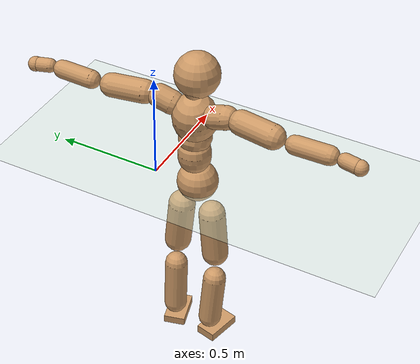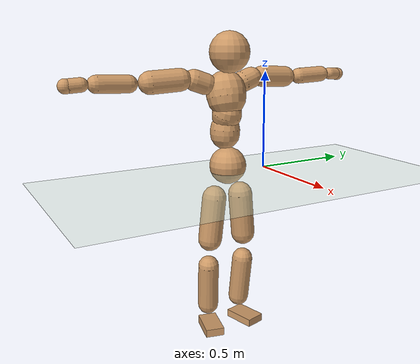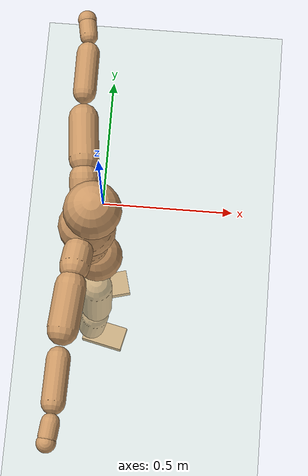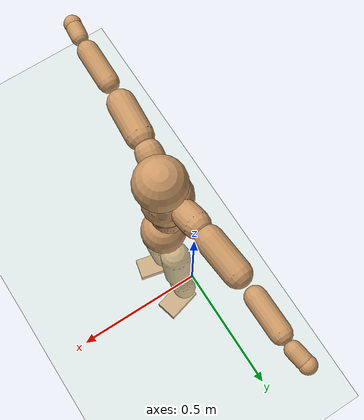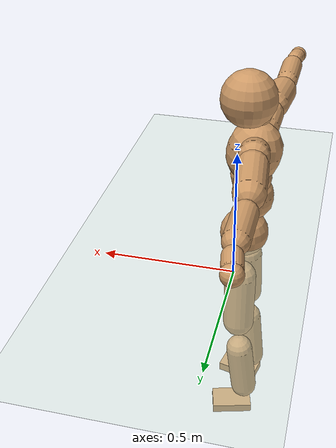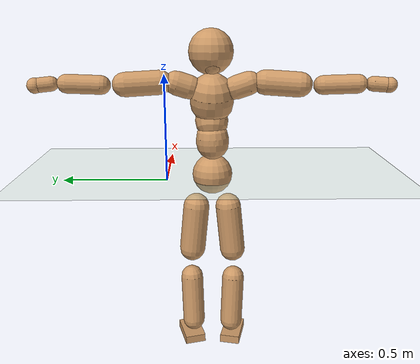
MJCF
<mujoco model="humanoid">
  <compiler coordinate="local"/>
  <default>
    <joint damping="0.0" armature="0.01" stiffness="0.0" limited="true"/>
    <geom conaffinity="1" condim="3" contype="7" margin="0.001" rgba="0.8 0.6 .4 1"/>
  </default>
  <asset>
    <texture type="skybox" builtin="gradient" rgb1=".4 .5 .6" rgb2="0 0 0" width="100" height="100"/>
    <texture builtin="flat" height="1278" mark="cross" markrgb="1 1 1" name="texgeom" random="0.01" rgb1="0.8 0.6 0.4" rgb2="0.8 0.6 0.4" type="cube" width="127"/>
    <texture builtin="checker" height="100" name="texplane" rgb1="0 0 0" rgb2="0.8 0.8 0.8" type="2d" width="100"/>
    <material name="MatPlane" reflectance="0.5" shininess="1" specular="1" texrepeat="60 60" texture="texplane"/>
    <material name="geom" texture="texgeom" texuniform="true"/>
  </asset>
  <worldbody>
    <light cutoff="100" diffuse="1 1 1" dir="-0 0 -1.3" directional="true" exponent="1" pos="0 0 1.3" specular=".1 .1 .1"/>
    <geom conaffinity="1" condim="3" name="floor" pos="0 0 0" rgba="0.8 0.9 0.8 1" size="100 100 .2" type="plane" material="MatPlane"/>
    <body name="Pelvis" pos="-0.0011 -0.2196 0.0309">
      <freejoint name="Pelvis"/>
      <geom type="sphere" contype="1" conaffinity="1" density="500" size="0.0955" pos="0.0000 0.0000 0.0000" name="Pelvis"/>
      <body name="L_Hip" pos="-0.0032 0.0718 -0.0889">
        <joint name="L_Hip_x" type="hinge" pos="0 0 0" axis="1 0 0" stiffness="800" damping="80" armature="0.02" range="-180.0000 180.0000"/>
        <joint name="L_Hip_y" type="hinge" pos="0 0 0" axis="0 1 0" stiffness="800" damping="80" armature="0.02" range="-180.0000 180.0000"/>
        <joint name="L_Hip_z" type="hinge" pos="0 0 0" axis="0 0 1" stiffness="800" damping="80" armature="0.02" range="-180.0000 180.0000"/>
        <geom type="capsule" contype="1" conaffinity="1" density="500" fromto="-0.0010 0.0071 -0.0750 -0.0041 0.0284 -0.3002" size="0.0633" name="L_Hip"/>
        <body name="L_Knee" pos="-0.0051 0.0355 -0.3752">
          <joint name="L_Knee_x" type="hinge" pos="0 0 0" axis="1 0 0" stiffness="800" damping="80" armature="0.02" range="-180.0000 180.0000"/>
          <joint name="L_Knee_y" type="hinge" pos="0 0 0" axis="0 1 0" stiffness="800" damping="80" armature="0.02" range="-180.0000 180.0000"/>
          <joint name="L_Knee_z" type="hinge" pos="0 0 0" axis="0 0 1" stiffness="800" damping="80" armature="0.02" range="-180.0000 180.0000"/>
          <geom type="capsule" contype="1" conaffinity="1" density="500" fromto="-0.0087 -0.0026 -0.0792 -0.0349 -0.0105 -0.3168" size="0.055" name="L_Knee"/>
          <body name="L_Ankle" pos="-0.0437 -0.0131 -0.3959">
            <joint name="L_Ankle_x" type="hinge" pos="0 0 0" axis="1 0 0" stiffness="800" damping="80" armature="0.02" range="-180.0000 180.0000"/>
            <joint name="L_Ankle_y" type="hinge" pos="0 0 0" axis="0 1 0" stiffness="800" damping="80" armature="0.02" range="-180.0000 180.0000"/>
            <joint name="L_Ankle_z" type="hinge" pos="0 0 0" axis="0 0 1" stiffness="800" damping="80" armature="0.02" range="-180.0000 180.0000"/>
            <geom type="box" contype="1" conaffinity="1" density="500" pos="0.0596 0.0156 -0.0280" size="0.085 0.0516 0.0202" quat="0.9918 0.0000 0.0000 0.1278" name="L_Ankle"/>
            <body name="L_Toe" pos="0.1191 0.0312 -0.056">
              <joint name="L_Toe_x" type="hinge" pos="0 0 0" axis="1 0 0" stiffness="500" damping="50" armature="0.02" range="-180.0000 180.0000"/>
              <joint name="L_Toe_y" type="hinge" pos="0 0 0" axis="0 1 0" stiffness="500" damping="50" armature="0.02" range="-180.0000 180.0000"/>
              <joint name="L_Toe_z" type="hinge" pos="0 0 0" axis="0 0 1" stiffness="500" damping="50" armature="0.02" range="-180.0000 180.0000"/>
              <geom type="box" contype="1" conaffinity="1" density="500" pos="0.0000 0.0000 0.0278" size="0.0011 0.0025 0.001" quat="0.9911 0.0000 0.0000 0.1334" name="L_Toe"/>
            </body>
          </body>
        </body>
      </body>
      <body name="R_Hip" pos="-0.0022 -0.07 -0.088">
        <joint name="R_Hip_x" type="hinge" pos="0 0 0" axis="1 0 0" stiffness="800" damping="80" armature="0.02" range="-180.0000 180.0000"/>
        <joint name="R_Hip_y" type="hinge" pos="0 0 0" axis="0 1 0" stiffness="800" damping="80" armature="0.02" range="-180.0000 180.0000"/>
        <joint name="R_Hip_z" type="hinge" pos="0 0 0" axis="0 0 1" stiffness="800" damping="80" armature="0.02" range="-180.0000 180.0000"/>
        <geom type="capsule" contype="1" conaffinity="1" density="500" fromto="-0.0019 -0.0078 -0.0761 -0.0077 -0.0312 -0.3044" size="0.0621" name="R_Hip"/>
        <body name="R_Knee" pos="-0.0096 -0.039 -0.3805">
          <joint name="R_Knee_x" type="hinge" pos="0 0 0" axis="1 0 0" stiffness="800" damping="80" armature="0.02" range="-180.0000 180.0000"/>
          <joint name="R_Knee_y" type="hinge" pos="0 0 0" axis="0 1 0" stiffness="800" damping="80" armature="0.02" range="-180.0000 180.0000"/>
          <joint name="R_Knee_z" type="hinge" pos="0 0 0" axis="0 0 1" stiffness="800" damping="80" armature="0.02" range="-180.0000 180.0000"/>
          <geom type="capsule" contype="1" conaffinity="1" density="500" fromto="-0.0085 0.0030 -0.0794 -0.0341 0.0120 -0.3174" size="0.055" name="R_Knee"/>
          <body name="R_Ankle" pos="-0.0426 0.015 -0.3968">
            <joint name="R_Ankle_x" type="hinge" pos="0 0 0" axis="1 0 0" stiffness="800" damping="80" armature="0.02" range="-180.0000 180.0000"/>
            <joint name="R_Ankle_y" type="hinge" pos="0 0 0" axis="0 1 0" stiffness="800" damping="80" armature="0.02" range="-180.0000 180.0000"/>
            <joint name="R_Ankle_z" type="hinge" pos="0 0 0" axis="0 0 1" stiffness="800" damping="80" armature="0.02" range="-180.0000 180.0000"/>
            <geom type="box" contype="1" conaffinity="1" density="500" pos="0.0618 -0.0142 -0.0248" size="0.0867 0.0492 0.021" quat="0.9936 0.0000 0.0000 -0.1127" name="R_Ankle"/>
            <body name="R_Toe" pos="0.1236 -0.0284 -0.0495">
              <joint name="R_Toe_x" type="hinge" pos="0 0 0" axis="1 0 0" stiffness="500" damping="50" armature="0.02" range="-180.0000 180.0000"/>
              <joint name="R_Toe_y" type="hinge" pos="0 0 0" axis="0 1 0" stiffness="500" damping="50" armature="0.02" range="-180.0000 180.0000"/>
              <joint name="R_Toe_z" type="hinge" pos="0 0 0" axis="0 0 1" stiffness="500" damping="50" armature="0.02" range="-180.0000 180.0000"/>
              <geom type="box" contype="1" conaffinity="1" density="500" pos="0.0000 0.0000 0.0255" size="0.001 0.0025 0.0011" quat="0.9946 0.0000 0.0000 -0.1034" name="R_Toe"/>
            </body>
          </body>
        </body>
      </body>
      <body name="Torso" pos="-0.0302 -0.0024 0.1073">
        <joint name="Torso_x" type="hinge" pos="0 0 0" axis="1 0 0" stiffness="1000" damping="100" armature="0.02" range="-180.0000 180.0000"/>
        <joint name="Torso_y" type="hinge" pos="0 0 0" axis="0 1 0" stiffness="1000" damping="100" armature="0.02" range="-180.0000 180.0000"/>
        <joint name="Torso_z" type="hinge" pos="0 0 0" axis="0 0 1" stiffness="1000" damping="100" armature="0.02" range="-180.0000 180.0000"/>
        <geom type="capsule" contype="1" conaffinity="1" density="500" fromto="0.0009 0.0032 0.0772 0.0006 0.0022 0.0514" size="0.0762" name="Torso"/>
        <body name="Spine" pos="0.0016 0.0054 0.1286">
          <joint name="Spine_x" type="hinge" pos="0 0 0" axis="1 0 0" stiffness="1000" damping="100" armature="0.02" range="-180.0000 180.0000"/>
          <joint name="Spine_y" type="hinge" pos="0 0 0" axis="0 1 0" stiffness="1000" damping="100" armature="0.02" range="-180.0000 180.0000"/>
          <joint name="Spine_z" type="hinge" pos="0 0 0" axis="0 0 1" stiffness="1000" damping="100" armature="0.02" range="-180.0000 180.0000"/>
          <geom type="capsule" contype="1" conaffinity="1" density="500" fromto="0.0141 0.0006 0.0313 0.0094 0.0004 0.0209" size="0.0762" name="Spine"/>
          <body name="Chest" pos="0.0235 0.001 0.0522">
            <joint name="Chest_x" type="hinge" pos="0 0 0" axis="1 0 0" stiffness="1000" damping="100" armature="0.02" range="-180.0000 180.0000"/>
            <joint name="Chest_y" type="hinge" pos="0 0 0" axis="0 1 0" stiffness="1000" damping="100" armature="0.02" range="-180.0000 180.0000"/>
            <joint name="Chest_z" type="hinge" pos="0 0 0" axis="0 0 1" stiffness="1000" damping="100" armature="0.02" range="-180.0000 180.0000"/>
            <geom type="capsule" contype="1" conaffinity="1" density="500" fromto="-0.0220 -0.0014 0.0922 -0.0147 -0.0009 0.0615" size="0.1006" name="Chest"/>
            <body name="Neck" pos="-0.0414 -0.0028 0.2166">
              <joint name="Neck_x" type="hinge" pos="0 0 0" axis="1 0 0" stiffness="500" damping="50" armature="0.02" range="-180.0000 180.0000"/>
              <joint name="Neck_y" type="hinge" pos="0 0 0" axis="0 1 0" stiffness="500" damping="50" armature="0.02" range="-180.0000 180.0000"/>
              <joint name="Neck_z" type="hinge" pos="0 0 0" axis="0 0 1" stiffness="500" damping="50" armature="0.02" range="-180.0000 180.0000"/>
              <geom type="capsule" contype="1" conaffinity="1" density="500" fromto="0.0100 0.0011 0.0129 0.0398 0.0043 0.0516" size="0.0448" name="Neck"/>
              <body name="Head" pos="0.0498 0.0054 0.0644">
                <joint name="Head_x" type="hinge" pos="0 0 0" axis="1 0 0" stiffness="500" damping="50" armature="0.02" range="-180.0000 180.0000"/>
                <joint name="Head_y" type="hinge" pos="0 0 0" axis="0 1 0" stiffness="500" damping="50" armature="0.02" range="-180.0000 180.0000"/>
                <joint name="Head_z" type="hinge" pos="0 0 0" axis="0 0 1" stiffness="500" damping="50" armature="0.02" range="-180.0000 180.0000"/>
                <geom type="sphere" contype="1" conaffinity="1" density="500" size="0.1021" pos="0.0000 0.0000 0.0000" name="Head"/>
              </body>
            </body>
            <body name="L_Thorax" pos="-0.032 0.0823 0.1237">
              <joint name="L_Thorax_x" type="hinge" pos="0 0 0" axis="1 0 0" stiffness="500" damping="50" armature="0.02" range="-180.0000 180.0000"/>
              <joint name="L_Thorax_y" type="hinge" pos="0 0 0" axis="0 1 0" stiffness="500" damping="50" armature="0.02" range="-180.0000 180.0000"/>
              <joint name="L_Thorax_z" type="hinge" pos="0 0 0" axis="0 0 1" stiffness="500" damping="50" armature="0.02" range="-180.0000 180.0000"/>
              <geom type="capsule" contype="1" conaffinity="1" density="500" fromto="-0.0021 0.0192 0.0063 -0.0084 0.0768 0.0251" size="0.0543" name="L_Thorax"/>
              <body name="L_Shoulder" pos="-0.0104 0.096 0.0314">
                <joint name="L_Shoulder_x" type="hinge" pos="0 0 0" axis="1 0 0" stiffness="500" damping="50" armature="0.02" range="-720.0000 720.0000"/>
                <joint name="L_Shoulder_y" type="hinge" pos="0 0 0" axis="0 1 0" stiffness="500" damping="50" armature="0.02" range="-720.0000 720.0000"/>
                <joint name="L_Shoulder_z" type="hinge" pos="0 0 0" axis="0 0 1" stiffness="500" damping="50" armature="0.02" range="-720.0000 720.0000"/>
                <geom type="capsule" contype="1" conaffinity="1" density="500" fromto="-0.0054 0.0519 -0.0026 -0.0216 0.2075 -0.0103" size="0.0545" name="L_Shoulder"/>
                <body name="L_Elbow" pos="-0.027 0.2594 -0.0128">
                  <joint name="L_Elbow_x" type="hinge" pos="0 0 0" axis="1 0 0" stiffness="500" damping="50" armature="0.02" range="-720.0000 720.0000"/>
                  <joint name="L_Elbow_y" type="hinge" pos="0 0 0" axis="0 1 0" stiffness="500" damping="50" armature="0.02" range="-720.0000 720.0000"/>
                  <joint name="L_Elbow_z" type="hinge" pos="0 0 0" axis="0 0 1" stiffness="500" damping="50" armature="0.02" range="-720.0000 720.0000"/>
                  <geom type="capsule" contype="1" conaffinity="1" density="500" fromto="-0.0002 0.0501 0.0018 -0.0007 0.2003 0.0073" size="0.0421" name="L_Elbow"/>
                  <body name="L_Wrist" pos="-0.0008 0.2503 0.0092">
                    <joint name="L_Wrist_x" type="hinge" pos="0 0 0" axis="1 0 0" stiffness="300" damping="30" armature="0.02" range="-180.0000 180.0000"/>
                    <joint name="L_Wrist_y" type="hinge" pos="0 0 0" axis="0 1 0" stiffness="300" damping="30" armature="0.02" range="-180.0000 180.0000"/>
                    <joint name="L_Wrist_z" type="hinge" pos="0 0 0" axis="0 0 1" stiffness="300" damping="30" armature="0.02" range="-180.0000 180.0000"/>
                    <geom type="capsule" contype="1" conaffinity="1" density="500" fromto="-0.0031 0.0171 -0.0015 -0.0124 0.0685 -0.0061" size="0.0325" name="L_Wrist"/>
                    <body name="L_Hand" pos="-0.0155 0.0856 -0.0077">
                      <joint name="L_Hand_x" type="hinge" pos="0 0 0" axis="1 0 0" stiffness="300" damping="30" armature="0.02" range="-180.0000 180.0000"/>
                      <joint name="L_Hand_y" type="hinge" pos="0 0 0" axis="0 1 0" stiffness="300" damping="30" armature="0.02" range="-180.0000 180.0000"/>
                      <joint name="L_Hand_z" type="hinge" pos="0 0 0" axis="0 0 1" stiffness="300" damping="30" armature="0.02" range="-180.0000 180.0000"/>
                      <geom type="sphere" contype="1" conaffinity="1" density="500" size="0.0342" pos="0.0000 0.0000 0.0000" name="L_Hand"/>
                    </body>
                  </body>
                </body>
              </body>
            </body>
            <body name="R_Thorax" pos="-0.0368 -0.0863 0.1206">
              <joint name="R_Thorax_x" type="hinge" pos="0 0 0" axis="1 0 0" stiffness="500" damping="50" armature="0.02" range="-180.0000 180.0000"/>
              <joint name="R_Thorax_y" type="hinge" pos="0 0 0" axis="0 1 0" stiffness="500" damping="50" armature="0.02" range="-180.0000 180.0000"/>
              <joint name="R_Thorax_z" type="hinge" pos="0 0 0" axis="0 0 1" stiffness="500" damping="50" armature="0.02" range="-180.0000 180.0000"/>
              <geom type="capsule" contype="1" conaffinity="1" density="500" fromto="-0.0019 -0.0203 0.0070 -0.0077 -0.0811 0.0279" size="0.0535" name="R_Thorax"/>
              <body name="R_Shoulder" pos="-0.0096 -0.1013 0.0349">
                <joint name="R_Shoulder_x" type="hinge" pos="0 0 0" axis="1 0 0" stiffness="500" damping="50" armature="0.02" range="-720.0000 720.0000"/>
                <joint name="R_Shoulder_y" type="hinge" pos="0 0 0" axis="0 1 0" stiffness="500" damping="50" armature="0.02" range="-720.0000 720.0000"/>
                <joint name="R_Shoulder_z" type="hinge" pos="0 0 0" axis="0 0 1" stiffness="500" damping="50" armature="0.02" range="-720.0000 720.0000"/>
                <geom type="capsule" contype="1" conaffinity="1" density="500" fromto="-0.0044 -0.0510 -0.0030 -0.0176 -0.2041 -0.0119" size="0.056" name="R_Shoulder"/>
                <body name="R_Elbow" pos="-0.0219 -0.2551 -0.0148">
                  <joint name="R_Elbow_x" type="hinge" pos="0 0 0" axis="1 0 0" stiffness="500" damping="50" armature="0.02" range="-720.0000 720.0000"/>
                  <joint name="R_Elbow_y" type="hinge" pos="0 0 0" axis="0 1 0" stiffness="500" damping="50" armature="0.02" range="-720.0000 720.0000"/>
                  <joint name="R_Elbow_z" type="hinge" pos="0 0 0" axis="0 0 1" stiffness="500" damping="50" armature="0.02" range="-720.0000 720.0000"/>
                  <geom type="capsule" contype="1" conaffinity="1" density="500" fromto="-0.0009 -0.0512 0.0016 -0.0034 -0.2049 0.0065" size="0.0425" name="R_Elbow"/>
                  <body name="R_Wrist" pos="-0.0043 -0.2561 0.0082">
                    <joint name="R_Wrist_x" type="hinge" pos="0 0 0" axis="1 0 0" stiffness="300" damping="30" armature="0.02" range="-180.0000 180.0000"/>
                    <joint name="R_Wrist_y" type="hinge" pos="0 0 0" axis="0 1 0" stiffness="300" damping="30" armature="0.02" range="-180.0000 180.0000"/>
                    <joint name="R_Wrist_z" type="hinge" pos="0 0 0" axis="0 0 1" stiffness="300" damping="30" armature="0.02" range="-180.0000 180.0000"/>
                    <geom type="capsule" contype="1" conaffinity="1" density="500" fromto="-0.0021 -0.0173 -0.0011 -0.0082 -0.0690 -0.0046" size="0.0334" name="R_Wrist"/>
                    <body name="R_Hand" pos="-0.0103 -0.0863 -0.0057">
                      <joint name="R_Hand_x" type="hinge" pos="0 0 0" axis="1 0 0" stiffness="300" damping="30" armature="0.02" range="-180.0000 180.0000"/>
                      <joint name="R_Hand_y" type="hinge" pos="0 0 0" axis="0 1 0" stiffness="300" damping="30" armature="0.02" range="-180.0000 180.0000"/>
                      <joint name="R_Hand_z" type="hinge" pos="0 0 0" axis="0 0 1" stiffness="300" damping="30" armature="0.02" range="-180.0000 180.0000"/>
                      <geom type="sphere" contype="1" conaffinity="1" density="500" size="0.0347" pos="0.0000 0.0000 0.0000" name="R_Hand"/>
                    </body>
                  </body>
                </body>
              </body>
            </body>
          </body>
        </body>
      </body>
    </body>
  </worldbody>
  <actuator>
    <motor name="L_Hip_x" joint="L_Hip_x" gear="500"/>
    <motor name="L_Hip_y" joint="L_Hip_y" gear="500"/>
    <motor name="L_Hip_z" joint="L_Hip_z" gear="500"/>
    <motor name="L_Knee_x" joint="L_Knee_x" gear="500"/>
    <motor name="L_Knee_y" joint="L_Knee_y" gear="500"/>
    <motor name="L_Knee_z" joint="L_Knee_z" gear="500"/>
    <motor name="L_Ankle_x" joint="L_Ankle_x" gear="500"/>
    <motor name="L_Ankle_y" joint="L_Ankle_y" gear="500"/>
    <motor name="L_Ankle_z" joint="L_Ankle_z" gear="500"/>
    <motor name="L_Toe_x" joint="L_Toe_x" gear="500"/>
    <motor name="L_Toe_y" joint="L_Toe_y" gear="500"/>
    <motor name="L_Toe_z" joint="L_Toe_z" gear="500"/>
    <motor name="R_Hip_x" joint="R_Hip_x" gear="500"/>
    <motor name="R_Hip_y" joint="R_Hip_y" gear="500"/>
    <motor name="R_Hip_z" joint="R_Hip_z" gear="500"/>
    <motor name="R_Knee_x" joint="R_Knee_x" gear="500"/>
    <motor name="R_Knee_y" joint="R_Knee_y" gear="500"/>
    <motor name="R_Knee_z" joint="R_Knee_z" gear="500"/>
    <motor name="R_Ankle_x" joint="R_Ankle_x" gear="500"/>
    <motor name="R_Ankle_y" joint="R_Ankle_y" gear="500"/>
    <motor name="R_Ankle_z" joint="R_Ankle_z" gear="500"/>
    <motor name="R_Toe_x" joint="R_Toe_x" gear="500"/>
    <motor name="R_Toe_y" joint="R_Toe_y" gear="500"/>
    <motor name="R_Toe_z" joint="R_Toe_z" gear="500"/>
    <motor name="Torso_x" joint="Torso_x" gear="500"/>
    <motor name="Torso_y" joint="Torso_y" gear="500"/>
    <motor name="Torso_z" joint="Torso_z" gear="500"/>
    <motor name="Spine_x" joint="Spine_x" gear="500"/>
    <motor name="Spine_y" joint="Spine_y" gear="500"/>
    <motor name="Spine_z" joint="Spine_z" gear="500"/>
    <motor name="Chest_x" joint="Chest_x" gear="500"/>
    <motor name="Chest_y" joint="Chest_y" gear="500"/>
    <motor name="Chest_z" joint="Chest_z" gear="500"/>
    <motor name="Neck_x" joint="Neck_x" gear="500"/>
    <motor name="Neck_y" joint="Neck_y" gear="500"/>
    <motor name="Neck_z" joint="Neck_z" gear="500"/>
    <motor name="Head_x" joint="Head_x" gear="500"/>
    <motor name="Head_y" joint="Head_y" gear="500"/>
    <motor name="Head_z" joint="Head_z" gear="500"/>
    <motor name="L_Thorax_x" joint="L_Thorax_x" gear="500"/>
    <motor name="L_Thorax_y" joint="L_Thorax_y" gear="500"/>
    <motor name="L_Thorax_z" joint="L_Thorax_z" gear="500"/>
    <motor name="L_Shoulder_x" joint="L_Shoulder_x" gear="500"/>
    <motor name="L_Shoulder_y" joint="L_Shoulder_y" gear="500"/>
    <motor name="L_Shoulder_z" joint="L_Shoulder_z" gear="500"/>
    <motor name="L_Elbow_x" joint="L_Elbow_x" gear="500"/>
    <motor name="L_Elbow_y" joint="L_Elbow_y" gear="500"/>
    <motor name="L_Elbow_z" joint="L_Elbow_z" gear="500"/>
    <motor name="L_Wrist_x" joint="L_Wrist_x" gear="500"/>
    <motor name="L_Wrist_y" joint="L_Wrist_y" gear="500"/>
    <motor name="L_Wrist_z" joint="L_Wrist_z" gear="500"/>
    <motor name="L_Hand_x" joint="L_Hand_x" gear="500"/>
    <motor name="L_Hand_y" joint="L_Hand_y" gear="500"/>
    <motor name="L_Hand_z" joint="L_Hand_z" gear="500"/>
    <motor name="R_Thorax_x" joint="R_Thorax_x" gear="500"/>
    <motor name="R_Thorax_y" joint="R_Thorax_y" gear="500"/>
    <motor name="R_Thorax_z" joint="R_Thorax_z" gear="500"/>
    <motor name="R_Shoulder_x" joint="R_Shoulder_x" gear="500"/>
    <motor name="R_Shoulder_y" joint="R_Shoulder_y" gear="500"/>
    <motor name="R_Shoulder_z" joint="R_Shoulder_z" gear="500"/>
    <motor name="R_Elbow_x" joint="R_Elbow_x" gear="500"/>
    <motor name="R_Elbow_y" joint="R_Elbow_y" gear="500"/>
    <motor name="R_Elbow_z" joint="R_Elbow_z" gear="500"/>
    <motor name="R_Wrist_x" joint="R_Wrist_x" gear="500"/>
    <motor name="R_Wrist_y" joint="R_Wrist_y" gear="500"/>
    <motor name="R_Wrist_z" joint="R_Wrist_z" gear="500"/>
    <motor name="R_Hand_x" joint="R_Hand_x" gear="500"/>
    <motor name="R_Hand_y" joint="R_Hand_y" gear="500"/>
    <motor name="R_Hand_z" joint="R_Hand_z" gear="500"/>
  </actuator>
  <contact>
    <exclude body1="Torso" body2="Chest"/>
    <exclude body1="Head" body2="Chest"/>
    <exclude body1="R_Knee" body2="R_Toe"/>
    <exclude body1="R_Knee" body2="L_Ankle"/>
    <exclude body1="R_Knee" body2="L_Toe"/>
    <exclude body1="L_Knee" body2="L_Toe"/>
    <exclude body1="L_Knee" body2="R_Ankle"/>
    <exclude body1="L_Knee" body2="R_Toe"/>
    <exclude body1="L_Shoulder" body2="Chest"/>
    <exclude body1="R_Shoulder" body2="Chest"/>
  </contact>
  <sensor/>
  <size njmax="700" nconmax="700"/>
</mujoco>
